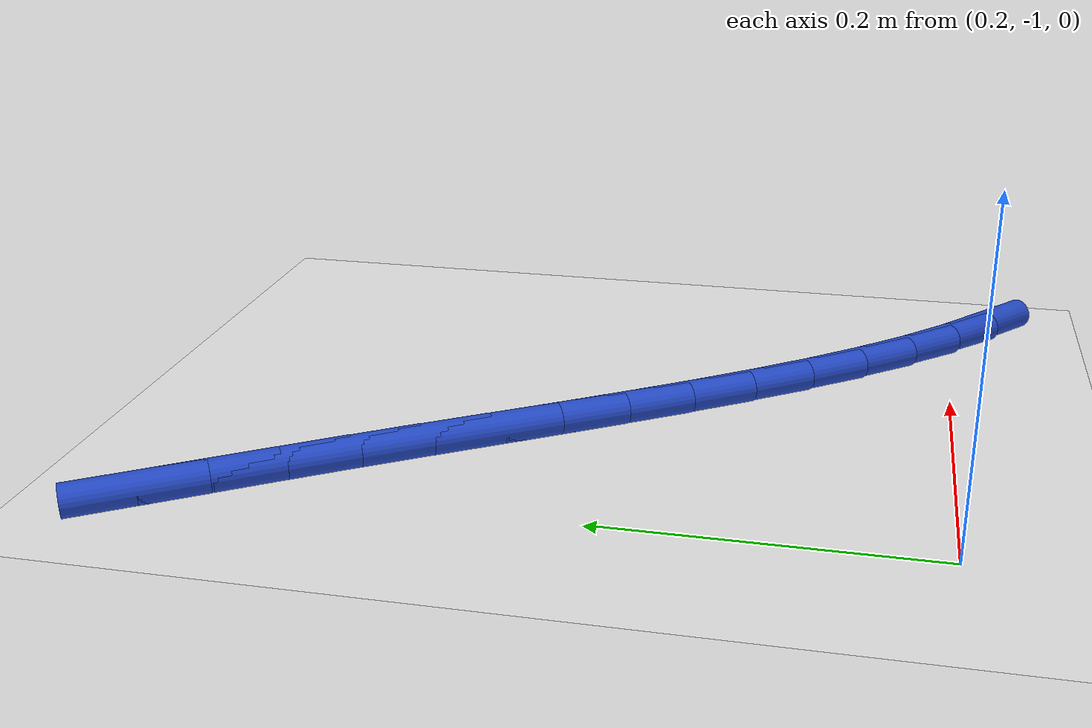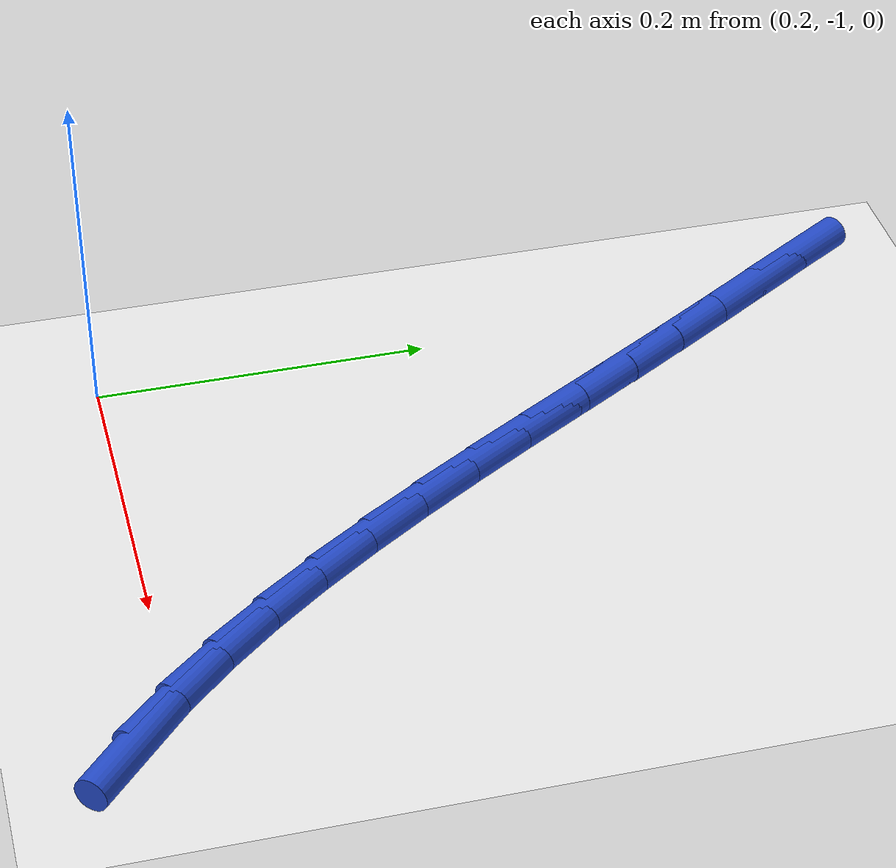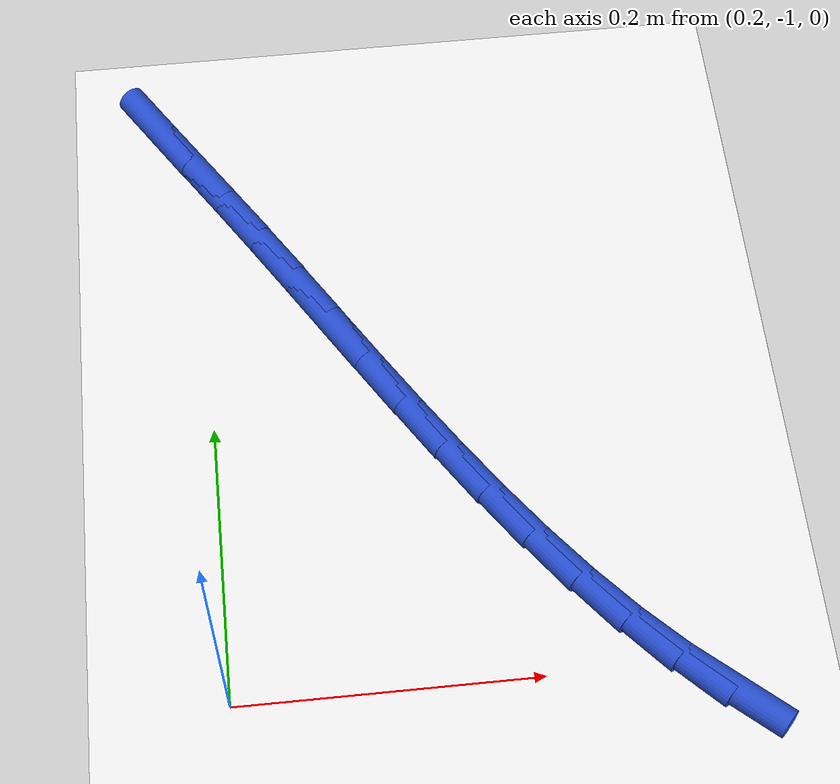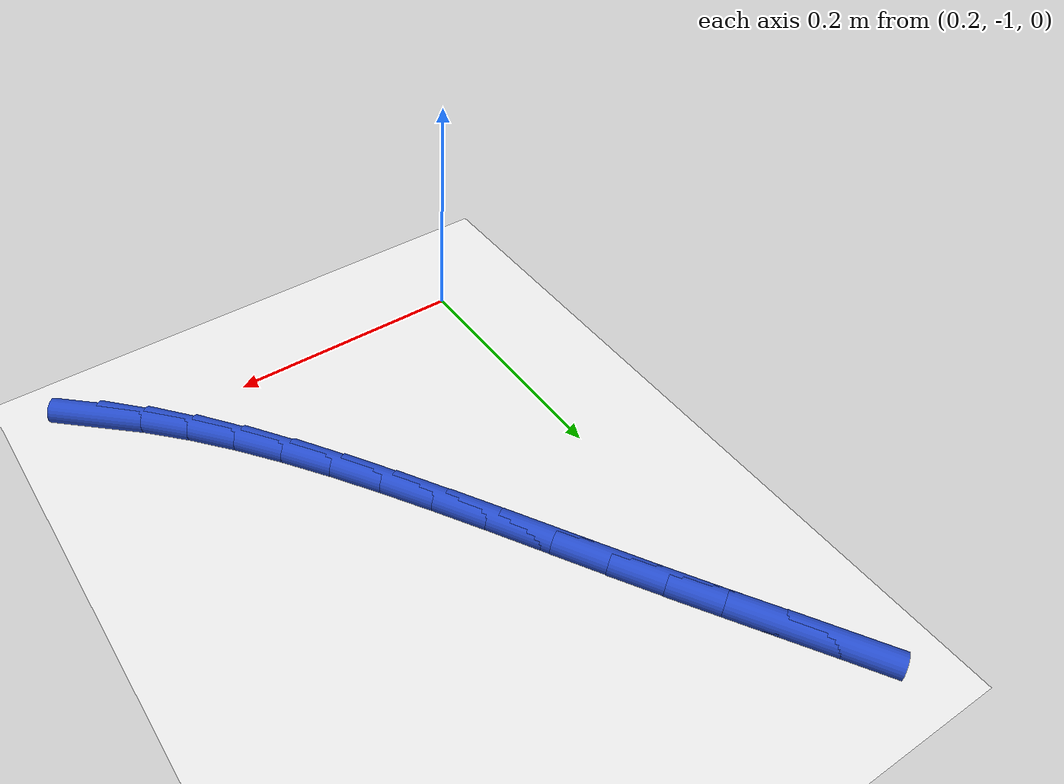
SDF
<sdf version="1.6">
 <world name="default">
  <model name="ground_plane">
   <static>1</static>
   <link name="link">
    <collision name="collision">
     <geometry><plane><normal>0 0 1</normal><size>100 100</size></plane></geometry>
     <surface><friction><ode><mu>100</mu><mu2>50</mu2></ode></friction></surface>
    </collision>
    <visual name="visual">
     <cast_shadows>0</cast_shadows>
     <geometry><plane><normal>0 0 1</normal><size>100 100</size></plane></geometry>
     <material>
      <script><uri>file://media/materials/scripts/gazebo.material</uri><name>Gazebo/WhiteGlow</name></script>
     </material>
    </visual>
   </link>
  </model>
  <model name="line">
   <link name="link_151">
    <pose>0.5145410715569737 -1.0249476607051506 0.01 0 1.57 -0.7247237461332761</pose>
    <collision name="collision">
     <geometry><cylinder><radius>0.01</radius><length>0.08</length></cylinder></geometry>
    </collision>
    <visual name="visual">
     <material>
      <script><name>Gazebo/Blue</name><uri>file://media/materials/scripts/gazebo.material</uri></script>
     </material>
     <geometry><cylinder><radius>0.01</radius><length>0.08</length></cylinder></geometry>
    </visual>
   </link>
   <link name="link_152">
    <pose>0.4858399808656125 -0.9995339868884129 0.01 0 1.57 -0.7954380620750434</pose>
    <collision name="collision">
     <geometry><cylinder><radius>0.01</radius><length>0.08</length></cylinder></geometry>
    </collision>
    <visual name="visual">
     <material>
      <script><name>Gazebo/Blue</name><uri>file://media/materials/scripts/gazebo.material</uri></script>
     </material>
     <geometry><cylinder><radius>0.01</radius><length>0.08</length></cylinder></geometry>
    </visual>
   </link>
   <link name="link_153">
    <pose>0.45820313722786005 -0.971336553935103 0.01 0 1.57 -0.8539855390895739</pose>
    <collision name="collision">
     <geometry><cylinder><radius>0.01</radius><length>0.08</length></cylinder></geometry>
    </collision>
    <visual name="visual">
     <material>
      <script><name>Gazebo/Blue</name><uri>file://media/materials/scripts/gazebo.material</uri></script>
     </material>
     <geometry><cylinder><radius>0.01</radius><length>0.08</length></cylinder></geometry>
    </visual>
   </link>
   <link name="link_154">
    <pose>0.4315325388404633 -0.9407313896617917 0.01 0 1.57 -0.9018200819200627</pose>
    <collision name="collision">
     <geometry><cylinder><radius>0.01</radius><length>0.08</length></cylinder></geometry>
    </collision>
    <visual name="visual">
     <material>
      <script><name>Gazebo/Blue</name><uri>file://media/materials/scripts/gazebo.material</uri></script>
     </material>
     <geometry><cylinder><radius>0.01</radius><length>0.08</length></cylinder></geometry>
    </visual>
   </link>
   <link name="link_155">
    <pose>0.40573018390017124 -0.908094521885052 0.01 0 1.57 -0.9402460290093512</pose>
    <collision name="collision">
     <geometry><cylinder><radius>0.01</radius><length>0.08</length></cylinder></geometry>
    </collision>
    <visual name="visual">
     <material>
      <script><name>Gazebo/Blue</name><uri>file://media/materials/scripts/gazebo.material</uri></script>
     </material>
     <geometry><cylinder><radius>0.01</radius><length>0.08</length></cylinder></geometry>
    </visual>
   </link>
   <link name="link_156">
    <pose>0.3806980706037309 -0.8738019784214545 0.01 0 1.57 -0.9703440094156189</pose>
    <collision name="collision">
     <geometry><cylinder><radius>0.01</radius><length>0.08</length></cylinder></geometry>
    </collision>
    <visual name="visual">
     <material>
      <script><name>Gazebo/Blue</name><uri>file://media/materials/scripts/gazebo.material</uri></script>
     </material>
     <geometry><cylinder><radius>0.01</radius><length>0.08</length></cylinder></geometry>
    </visual>
   </link>
   <link name="link_157">
    <pose>0.35633819714789 -0.8382297870875708 0.01 0 1.57 -0.992950887780038</pose>
    <collision name="collision">
     <geometry><cylinder><radius>0.01</radius><length>0.08</length></cylinder></geometry>
    </collision>
    <visual name="visual">
     <material>
      <script><name>Gazebo/Blue</name><uri>file://media/materials/scripts/gazebo.material</uri></script>
     </material>
     <geometry><cylinder><radius>0.01</radius><length>0.08</length></cylinder></geometry>
    </visual>
   </link>
   <link name="link_158">
    <pose>0.3325525617293963 -0.8017539756999724 0.01 0 1.57 -1.008662691583917</pose>
    <collision name="collision">
     <geometry><cylinder><radius>0.01</radius><length>0.08</length></cylinder></geometry>
    </collision>
    <visual name="visual">
     <material>
      <script><name>Gazebo/Blue</name><uri>file://media/materials/scripts/gazebo.material</uri></script>
     </material>
     <geometry><cylinder><radius>0.01</radius><length>0.08</length></cylinder></geometry>
    </visual>
   </link>
   <link name="link_159">
    <pose>0.30924316254499695 -0.76475057207523 0.01 0 1.57 -1.0178428539145836</pose>
    <collision name="collision">
     <geometry><cylinder><radius>0.01</radius><length>0.08</length></cylinder></geometry>
    </collision>
    <visual name="visual">
     <material>
      <script><name>Gazebo/Blue</name><uri>file://media/materials/scripts/gazebo.material</uri></script>
     </material>
     <geometry><cylinder><radius>0.01</radius><length>0.08</length></cylinder></geometry>
    </visual>
   </link>
   <link name="link_160">
    <pose>0.2863119977914405 -0.7275956040299164 0.01 0 1.57 -1.0206261663896572</pose>
    <collision name="collision">
     <geometry><cylinder><radius>0.01</radius><length>0.08</length></cylinder></geometry>
    </collision>
    <visual name="visual">
     <material>
      <script><name>Gazebo/Blue</name><uri>file://media/materials/scripts/gazebo.material</uri></script>
     </material>
     <geometry><cylinder><radius>0.01</radius><length>0.08</length></cylinder></geometry>
    </visual>
   </link>
   <link name="link_161">
    <pose>0.26366106566547426 -0.6906650993806023 0.01 0 1.57 -1.0169129418661589</pose>
    <collision name="collision">
     <geometry><cylinder><radius>0.01</radius><length>0.08</length></cylinder></geometry>
    </collision>
    <visual name="visual">
     <material>
      <script><name>Gazebo/Blue</name><uri>file://media/materials/scripts/gazebo.material</uri></script>
     </material>
     <geometry><cylinder><radius>0.01</radius><length>0.08</length></cylinder></geometry>
    </visual>
   </link>
   <link name="link_162">
    <pose>0.2411923643638458 -0.654335085943859 0.01 0 1.57 -1.0070692935735541</pose>
    <collision name="collision">
     <geometry><cylinder><radius>0.01</radius><length>0.08</length></cylinder></geometry>
    </collision>
    <visual name="visual">
     <material>
      <script><name>Gazebo/Blue</name><uri>file://media/materials/scripts/gazebo.material</uri></script>
     </material>
     <geometry><cylinder><radius>0.01</radius><length>0.08</length></cylinder></geometry>
    </visual>
   </link>
   <link name="link_163">
    <pose>0.2188229195440686 -0.6189490017546373 0.01 0 1.57 -0.9988538254447535</pose>
    <collision name="collision">
     <geometry><cylinder><radius>0.01</radius><length>0.08</length></cylinder></geometry>
    </collision>
    <visual name="visual">
     <material>
      <script><name>Gazebo/Blue</name><uri>file://media/materials/scripts/gazebo.material</uri></script>
     </material>
     <geometry><cylinder><radius>0.01</radius><length>0.08</length></cylinder></geometry>
    </visual>
   </link>
   <link name="link_164">
    <pose>0.19663811663063763 -0.5844851660746416 0.01 0 1.57 -0.997673486459618</pose>
    <collision name="collision">
     <geometry><cylinder><radius>0.01</radius><length>0.08</length></cylinder></geometry>
    </collision>
    <visual name="visual">
     <material>
      <script><name>Gazebo/Blue</name><uri>file://media/materials/scripts/gazebo.material</uri></script>
     </material>
     <geometry><cylinder><radius>0.01</radius><length>0.08</length></cylinder></geometry>
    </visual>
   </link>
   <link name="link_165">
    <pose>0.17482902614838058 -0.5506927008052117 0.01 0 1.57 -1.0040306847380938</pose>
    <collision name="collision">
     <geometry><cylinder><radius>0.01</radius><length>0.08</length></cylinder></geometry>
    </collision>
    <visual name="visual">
     <material>
      <script><name>Gazebo/Blue</name><uri>file://media/materials/scripts/gazebo.material</uri></script>
     </material>
     <geometry><cylinder><radius>0.01</radius><length>0.08</length></cylinder></geometry>
    </visual>
   </link>
  </model>
 </world>
</sdf>
